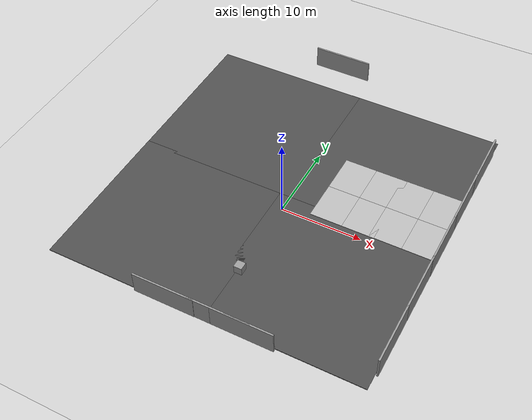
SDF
<sdf version="1.7">
 <world name="default">
  <light name="sun" type="directional">
   <pose>0 0 10 0 -0 0</pose>
   <diffuse>0.8 0.8 0.8 1</diffuse>
   <specular>0.2 0.2 0.2 1</specular>
   <attenuation>
    <range>1000</range>
    <constant>0.9</constant>
    <linear>0.01</linear>
    <quadratic>0.001</quadratic>
   </attenuation>
   <direction>-0.5 0.1 -0.9</direction>
   <spot><inner_angle>0</inner_angle><outer_angle>0</outer_angle><falloff>0</falloff></spot>
  </light>
  <model name="ground_plane">
   <static>1</static>
   <link name="link">
    <collision name="collision">
     <geometry><plane><normal>0 0 1</normal><size>100 100</size></plane></geometry>
     <surface><friction><ode><mu>100</mu><mu2>50</mu2></ode></friction></surface>
    </collision>
    <visual name="visual">
     <cast_shadows>0</cast_shadows>
     <geometry><plane><normal>0 0 1</normal><size>100 100</size></plane></geometry>
     <material>
      <script><uri>file://media/materials/scripts/gazebo.material</uri><name>Gazebo/Grey</name></script>
     </material>
    </visual>
   </link>
  </model>
  <gravity>0 0 -9.8</gravity>
  <magnetic_field>6e-06 2.3e-05 -4.2e-05</magnetic_field>
  <atmosphere type="adiabatic"/>
  <physics name="default_physics" default="0" type="ode">
   <max_step_size>0.001</max_step_size>
   <real_time_factor>1</real_time_factor>
   <real_time_update_rate>1000</real_time_update_rate>
  </physics>
  <scene><ambient>0.4 0.4 0.4 1</ambient><background>0.7 0.7 0.7 1</background><shadows>1</shadows></scene>
  <audio><device>default</device></audio>
  <spherical_coordinates>
   <surface_model>EARTH_WGS84</surface_model>
   <latitude_deg>0</latitude_deg>
   <longitude_deg>0</longitude_deg>
   <elevation>0</elevation>
   <heading_deg>0</heading_deg>
  </spherical_coordinates>
  <model name="asphalt_plane">
   <static>1</static>
   <link name="link">
    <collision name="collision">
     <geometry><box><size>20 20 0.1</size></box></geometry>
     <surface><friction><ode><mu>100</mu><mu2>50</mu2></ode></friction></surface>
    </collision>
    <visual name="visual">
     <cast_shadows>0</cast_shadows>
     <geometry><box><size>20 20 0.1</size></box></geometry>
     <material>
      <script>
       <uri>model://asphalt_plane/materials/scripts</uri>
       <uri>model://asphalt_plane/materials/textures</uri>
       <name>vrc/asphalt</name>
      </script>
     </material>
    </visual>
   </link>
   <pose>-10.1692 -7.43707 0 0 -0 0</pose>
  </model>
  <model name="asphalt_plane_clone">
   <static>1</static>
   <link name="link">
    <collision name="collision">
     <geometry><box><size>20 20 0.1</size></box></geometry>
     <surface><friction><ode><mu>100</mu><mu2>50</mu2></ode></friction></surface>
    </collision>
    <visual name="visual">
     <cast_shadows>0</cast_shadows>
     <geometry><box><size>20 20 0.1</size></box></geometry>
     <material>
      <script>
       <uri>model://asphalt_plane/materials/scripts</uri>
       <uri>model://asphalt_plane/materials/textures</uri>
       <name>vrc/asphalt</name>
      </script>
     </material>
    </visual>
   </link>
   <pose>-10.1603 12.171 0 0 -0 0</pose>
  </model>
  <model name="asphalt_plane_clone_clone">
   <static>1</static>
   <link name="link">
    <collision name="collision">
     <geometry><box><size>20 20 0.1</size></box></geometry>
     <surface><friction><ode><mu>100</mu><mu2>50</mu2></ode></friction></surface>
    </collision>
    <visual name="visual">
     <cast_shadows>0</cast_shadows>
     <geometry><box><size>20 20 0.1</size></box></geometry>
     <material>
      <script>
       <uri>model://asphalt_plane/materials/scripts</uri>
       <uri>model://asphalt_plane/materials/textures</uri>
       <name>vrc/asphalt</name>
      </script>
     </material>
    </visual>
   </link>
   <pose>8.71597 12.1785 0 0 -0 0</pose>
  </model>
  <model name="asphalt_plane_clone_clone_0">
   <static>1</static>
   <link name="link">
    <collision name="collision">
     <geometry><box><size>20 20 0.1</size></box></geometry>
     <surface><friction><ode><mu>100</mu><mu2>50</mu2></ode></friction></surface>
    </collision>
    <visual name="visual">
     <cast_shadows>0</cast_shadows>
     <geometry><box><size>20 20 0.1</size></box></geometry>
     <material>
      <script>
       <uri>model://asphalt_plane/materials/scripts</uri>
       <uri>model://asphalt_plane/materials/textures</uri>
       <name>vrc/asphalt</name>
      </script>
     </material>
    </visual>
   </link>
   <pose>8.60996 -7.34898 0 0 -0 0</pose>
  </model>
  <model name="grey_wall">
   <static>1</static>
   <link name="link">
    <pose>0 0 1.4 0 -0 0</pose>
    <collision name="collision"><geometry><box><size>7.5 0.2 2.8</size></box></geometry></collision>
    <visual name="visual">
     <cast_shadows>0</cast_shadows>
     <geometry><box><size>7.5 0.2 2.8</size></box></geometry>
     <material>
      <script>
       <uri>model://grey_wall/materials/scripts</uri>
       <uri>model://grey_wall/materials/textures</uri>
       <name>vrc/grey_wall</name>
      </script>
     </material>
    </visual>
   </link>
   <pose>-4.8114 -17.6626 0 0 -0 0</pose>
  </model>
  <model name="grey_wall_clone">
   <static>1</static>
   <link name="link">
    <pose>0 0 1.4 0 -0 0</pose>
    <collision name="collision"><geometry><box><size>7.5 0.2 2.8</size></box></geometry></collision>
    <visual name="visual">
     <cast_shadows>0</cast_shadows>
     <geometry><box><size>7.5 0.2 2.8</size></box></geometry>
     <material>
      <script>
       <uri>model://grey_wall/materials/scripts</uri>
       <uri>model://grey_wall/materials/textures</uri>
       <name>vrc/grey_wall</name>
      </script>
     </material>
    </visual>
   </link>
   <pose>1.84642 -17.6367 0 0 -0 0</pose>
  </model>
  <model name="grey_wall_clone_0">
   <static>1</static>
   <link name="link">
    <pose>0 0 1.4 0 -0 0</pose>
    <collision name="collision"><geometry><box><size>7.5 0.2 2.8</size></box></geometry></collision>
    <visual name="visual">
     <cast_shadows>0</cast_shadows>
     <geometry><box><size>7.5 0.2 2.8</size></box></geometry>
     <material>
      <script>
       <uri>model://grey_wall/materials/scripts</uri>
       <uri>model://grey_wall/materials/textures</uri>
       <name>vrc/grey_wall</name>
      </script>
     </material>
    </visual>
   </link>
   <pose>4.62088 -17.6372 0 0 -0 0</pose>
  </model>
  <model name="grey_wall_clone_clone">
   <static>1</static>
   <link name="link">
    <pose>0 0 1.4 0 -0 0</pose>
    <collision name="collision"><geometry><box><size>7.5 0.2 2.8</size></box></geometry></collision>
    <visual name="visual">
     <cast_shadows>0</cast_shadows>
     <geometry><box><size>7.5 0.2 2.8</size></box></geometry>
     <material>
      <script>
       <uri>model://grey_wall/materials/scripts</uri>
       <uri>model://grey_wall/materials/textures</uri>
       <name>vrc/grey_wall</name>
      </script>
     </material>
    </visual>
   </link>
   <pose>-4.48764 26.0166 0 0 -0 0</pose>
  </model>
  <model name="grey_wall_clone_clone_clone">
   <static>1</static>
   <link name="link">
    <pose>0 0 1.4 0 -0 0</pose>
    <collision name="collision"><geometry><box><size>7.5 0.2 2.8</size></box></geometry></collision>
    <visual name="visual">
     <cast_shadows>0</cast_shadows>
     <geometry><box><size>7.5 0.2 2.8</size></box></geometry>
     <material>
      <script>
       <uri>model://grey_wall/materials/scripts</uri>
       <uri>model://grey_wall/materials/textures</uri>
       <name>vrc/grey_wall</name>
      </script>
     </material>
    </visual>
   </link>
   <pose>18.7544 16.0387 0 0 0 -1.56734</pose>
  </model>
  <model name="grey_wall_clone_clone_clone_clone">
   <static>1</static>
   <link name="link">
    <pose>0 0 1.4 0 -0 0</pose>
    <collision name="collision"><geometry><box><size>7.5 0.2 2.8</size></box></geometry></collision>
    <visual name="visual">
     <cast_shadows>0</cast_shadows>
     <geometry><box><size>7.5 0.2 2.8</size></box></geometry>
     <material>
      <script>
       <uri>model://grey_wall/materials/scripts</uri>
       <uri>model://grey_wall/materials/textures</uri>
       <name>vrc/grey_wall</name>
      </script>
     </material>
    </visual>
   </link>
   <pose>18.767 9.41754 0 0 0 -1.56734</pose>
  </model>
  <model name="grey_wall_clone_clone_clone_clone_0">
   <static>1</static>
   <link name="link">
    <pose>0 0 1.4 0 -0 0</pose>
    <collision name="collision"><geometry><box><size>7.5 0.2 2.8</size></box></geometry></collision>
    <visual name="visual">
     <cast_shadows>0</cast_shadows>
     <geometry><box><size>7.5 0.2 2.8</size></box></geometry>
     <material>
      <script>
       <uri>model://grey_wall/materials/scripts</uri>
       <uri>model://grey_wall/materials/textures</uri>
       <name>vrc/grey_wall</name>
      </script>
     </material>
    </visual>
   </link>
   <pose>18.7963 2.45369 0 0 0 -1.56734</pose>
  </model>
  <model name="grey_wall_clone_clone_clone_clone_1">
   <static>1</static>
   <link name="link">
    <pose>0 0 1.4 0 -0 0</pose>
    <collision name="collision"><geometry><box><size>7.5 0.2 2.8</size></box></geometry></collision>
    <visual name="visual">
     <cast_shadows>0</cast_shadows>
     <geometry><box><size>7.5 0.2 2.8</size></box></geometry>
     <material>
      <script>
       <uri>model://grey_wall/materials/scripts</uri>
       <uri>model://grey_wall/materials/textures</uri>
       <name>vrc/grey_wall</name>
      </script>
     </material>
    </visual>
   </link>
   <pose>18.8058 -4.41342 0 0 0 -1.56734</pose>
  </model>
  <model name="grey_wall_clone_clone_clone_clone_2">
   <static>1</static>
   <link name="link">
    <pose>0 0 1.4 0 -0 0</pose>
    <collision name="collision"><geometry><box><size>7.5 0.2 2.8</size></box></geometry></collision>
    <visual name="visual">
     <cast_shadows>0</cast_shadows>
     <geometry><box><size>7.5 0.2 2.8</size></box></geometry>
     <material>
      <script>
       <uri>model://grey_wall/materials/scripts</uri>
       <uri>model://grey_wall/materials/textures</uri>
       <name>vrc/grey_wall</name>
      </script>
     </material>
    </visual>
   </link>
   <pose>18.8343 -11.7301 0 0 0 -1.56734</pose>
  </model>
  <model name="mud_box">
   <static>1</static>
   <link name="link">
    <collision name="collision"><geometry><box><size>8 10 0.2</size></box></geometry></collision>
    <visual name="visual_1">
     <pose>-2 2.5 0 0 -0 0</pose>
     <cast_shadows>0</cast_shadows>
     <geometry><box><size>4 5 0.2</size></box></geometry>
     <material>
      <script>
       <uri>model://mud_box/materials/scripts</uri>
       <uri>model://mud_box/materials/textures</uri>
       <name>vrc/mud</name>
      </script>
     </material>
    </visual>
    <visual name="visual_2">
     <pose>2 2.5 0 0 -0 0</pose>
     <cast_shadows>0</cast_shadows>
     <geometry><box><size>4 5 0.2</size></box></geometry>
     <material>
      <script>
       <uri>model://mud_box/materials/scripts</uri>
       <uri>model://mud_box/materials/textures</uri>
       <name>vrc/mud</name>
      </script>
     </material>
    </visual>
    <visual name="visual_3">
     <pose>2 -2.5 0 0 -0 0</pose>
     <cast_shadows>0</cast_shadows>
     <geometry><box><size>4 5 0.2</size></box></geometry>
     <material>
      <script>
       <uri>model://mud_box/materials/scripts</uri>
       <uri>model://mud_box/materials/textures</uri>
       <name>vrc/mud</name>
      </script>
     </material>
    </visual>
    <visual name="visual_4">
     <pose>-2 -2.5 0 0 -0 0</pose>
     <cast_shadows>0</cast_shadows>
     <geometry><box><size>4 5 0.2</size></box></geometry>
     <material>
      <script>
       <uri>model://mud_box/materials/scripts</uri>
       <uri>model://mud_box/materials/textures</uri>
       <name>vrc/mud</name>
      </script>
     </material>
    </visual>
   </link>
   <pose>14.6137 5.86275 0 0 -0 0</pose>
  </model>
  <model name="mud_box_clone">
   <static>1</static>
   <link name="link">
    <collision name="collision"><geometry><box><size>8 10 0.2</size></box></geometry></collision>
    <visual name="visual_1">
     <pose>-2 2.5 0 0 -0 0</pose>
     <cast_shadows>0</cast_shadows>
     <geometry><box><size>4 5 0.2</size></box></geometry>
     <material>
      <script>
       <uri>model://mud_box/materials/scripts</uri>
       <uri>model://mud_box/materials/textures</uri>
       <name>vrc/mud</name>
      </script>
     </material>
    </visual>
    <visual name="visual_2">
     <pose>2 2.5 0 0 -0 0</pose>
     <cast_shadows>0</cast_shadows>
     <geometry><box><size>4 5 0.2</size></box></geometry>
     <material>
      <script>
       <uri>model://mud_box/materials/scripts</uri>
       <uri>model://mud_box/materials/textures</uri>
       <name>vrc/mud</name>
      </script>
     </material>
    </visual>
    <visual name="visual_3">
     <pose>2 -2.5 0 0 -0 0</pose>
     <cast_shadows>0</cast_shadows>
     <geometry><box><size>4 5 0.2</size></box></geometry>
     <material>
      <script>
       <uri>model://mud_box/materials/scripts</uri>
       <uri>model://mud_box/materials/textures</uri>
       <name>vrc/mud</name>
      </script>
     </material>
    </visual>
    <visual name="visual_4">
     <pose>-2 -2.5 0 0 -0 0</pose>
     <cast_shadows>0</cast_shadows>
     <geometry><box><size>4 5 0.2</size></box></geometry>
     <material>
      <script>
       <uri>model://mud_box/materials/scripts</uri>
       <uri>model://mud_box/materials/textures</uri>
       <name>vrc/mud</name>
      </script>
     </material>
    </visual>
   </link>
   <pose>7.23773 5.83307 0 0 -0 0</pose>
  </model>
  <model name="unit_box">
   <pose>0.147139 -10.1528 0.55 -0 -0 -2e-06</pose>
   <link name="link">
    <inertial>
     <mass>1</mass>
     <inertia>
      <ixx>0.166667</ixx>
      <ixy>0</ixy>
      <ixz>0</ixz>
      <iyy>0.166667</iyy>
      <iyz>0</iyz>
      <izz>0.166667</izz>
     </inertia>
    </inertial>
    <collision name="collision">
     <laser_retro>1.0</laser_retro>
     <geometry><box><size>1 1 1</size></box></geometry>
    </collision>
    <visual name="visual">
     <geometry><box><size>1 1 1</size></box></geometry>
     <material>
      <script><name>Gazebo/Grey</name><uri>file://media/materials/scripts/gazebo.material</uri></script>
     </material>
    </visual>
   </link>
  </model>
 </world>
</sdf>
